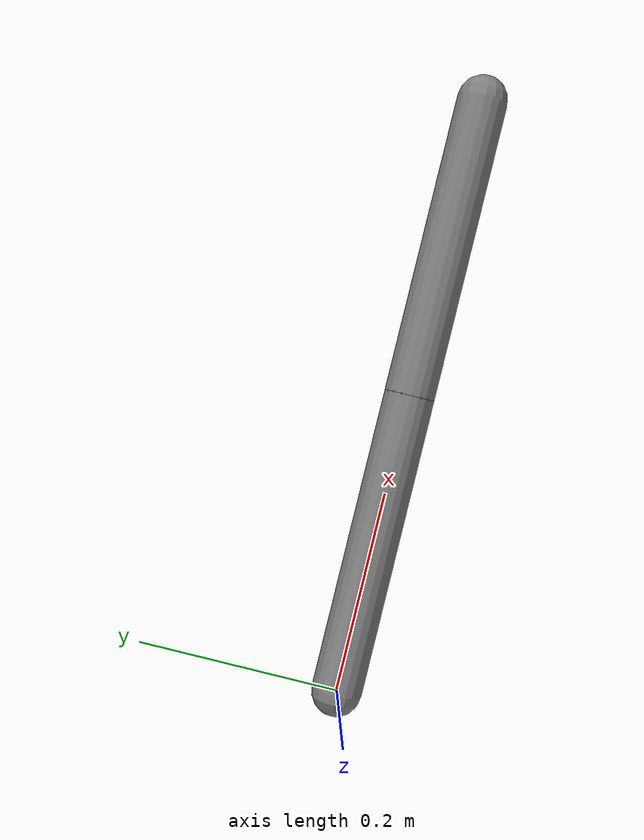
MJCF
<mujoco model="cadence_two_joint">
  <option timestep="0.005" gravity="0 0 0"/>
  <worldbody><body name="base"><body name="link_a">
    <joint name="joint_a" type="hinge" axis="0 0 1" range="-90 90"/>
    <geom type="capsule" fromto="0 0 0 0.3 0 0" size="0.025" mass="1"/>
    <body name="link_b" pos="0.3 0 0">
      <joint name="joint_b" type="hinge" axis="0 0 1" range="-90 90"/>
      <geom type="capsule" fromto="0 0 0 0.3 0 0" size="0.025" mass="1"/>
    </body>
  </body></body></worldbody>
  <actuator><motor name="joint_a_motor" joint="joint_a" ctrlrange="-10 10"/><motor name="joint_b_motor" joint="joint_b" ctrlrange="-10 10"/></actuator>
</mujoco>
